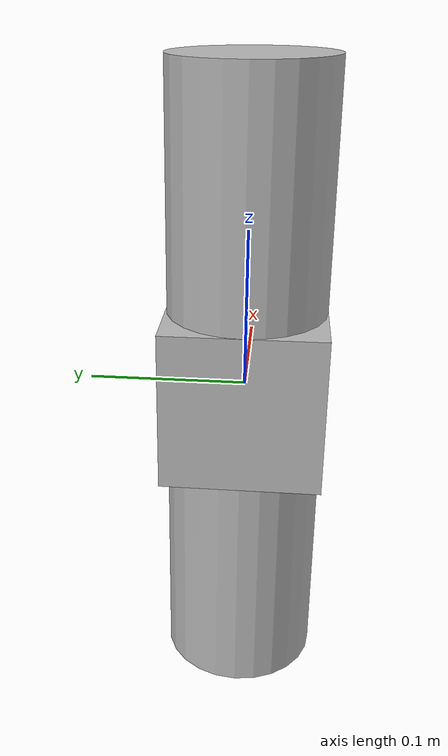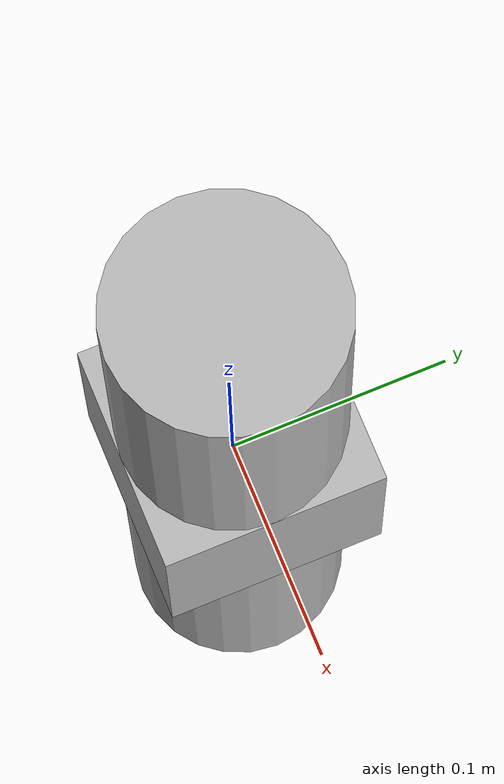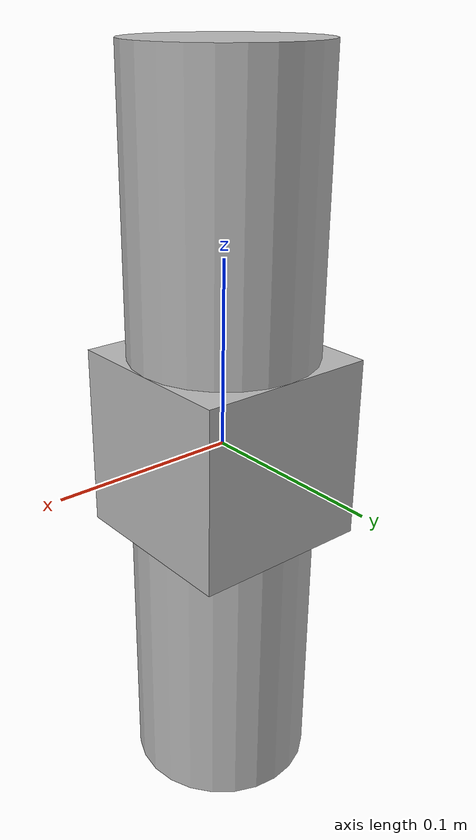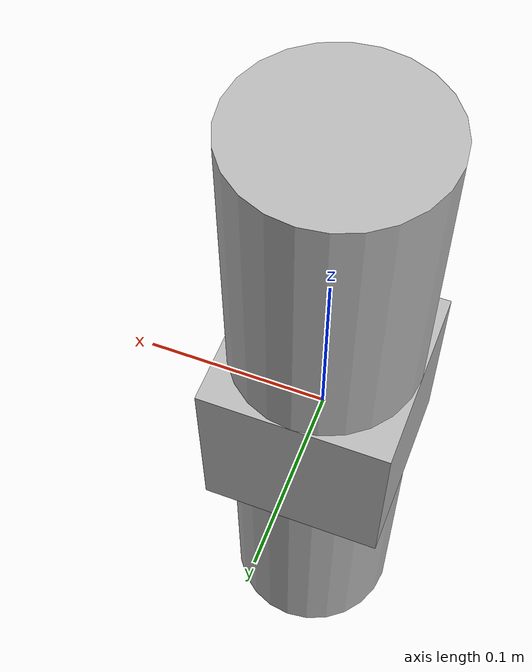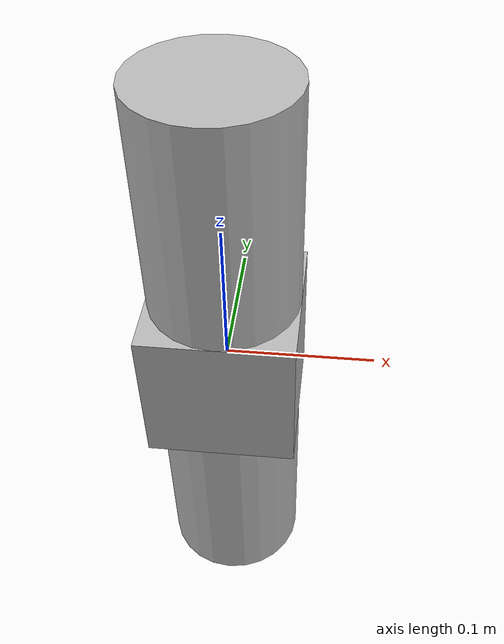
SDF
<?xml version="1.0" ?>
<sdf version="1.7">
  <world name="my_world">
    <!-- Include the ground plane or other models here, if needed -->

    <!-- Include the robot model -->
    <model name="robot_arm">
      <pose>0 0 0 0 0 0</pose>
      <static>false</static>
      <link name="base_link">
        <visual name="visual">
          <geometry>
            <box>
              <size>0.1 0.1 0.1</size>
            </box>
          </geometry>
        </visual>
      </link>
      <link name="link1">
        <visual name="visual">
          <geometry>
            <cylinder>
              <radius>0.05</radius>
              <length>0.4</length>
            </cylinder>
          </geometry>
        </visual>
        <collision name="collision">
          <geometry>
            <cylinder>
              <radius>0.05</radius>
              <length>0.4</length>
            </cylinder>
          </geometry>
        </collision>
      </link>
      <link name="link2">
        <visual name="visual">
          <geometry>
            <box>
              <size>0.1 0.1 0.1</size>
            </box>
          </geometry>
        </visual>
        <collision name="collision">
          <geometry>
            <box>
              <size>0.1 0.1 0.1</size>
            </box>
          </geometry>
        </collision>
      </link>
      <link name="end_effector">
        <visual name="visual">
          <geometry>
            <sphere>
              <radius>0.05</radius>
            </sphere>
          </geometry>
        </visual>
        <collision name="collision">
          <geometry>
            <sphere>
              <radius>0.05</radius>
            </sphere>
          </geometry>
        </collision>
      </link>
      <joint name="joint1" type="revolute">
        <parent>base_link</parent>
        <child>link1</child>
        <axis>
          <xyz>0 0 1</xyz>
        </axis>
        <limit>
          <lower>-1.57</lower>
          <upper>1.57</upper>
        </limit>
      </joint>
      <joint name="joint2" type="revolute">
        <parent>link1</parent>
        <child>link2</child>
        <axis>
          <xyz>0 1 0</xyz>
        </axis>
        <limit>
          <lower>-1.57</lower>
          <upper>1.57</upper>
        </limit>
      </joint>
      <joint name="joint3" type="revolute">
        <parent>link2</parent>
        <child>end_effector</child>
        <axis>
          <xyz>0 0 1</xyz>
        </axis>
        <limit>
          <lower>-1.57</lower>
          <upper>1.57</upper>
        </limit>
      </joint>
    </model>

    <!-- Include the Gazebo GUI plugin for user interface -->
    <gui>
      <camera name="user_camera">
        <pose>4.0 -4.0 4.0 0 0 0</pose>
        <view_controller>orbit</view_controller>
      </camera>
    </gui>
  </world>
</sdf>
